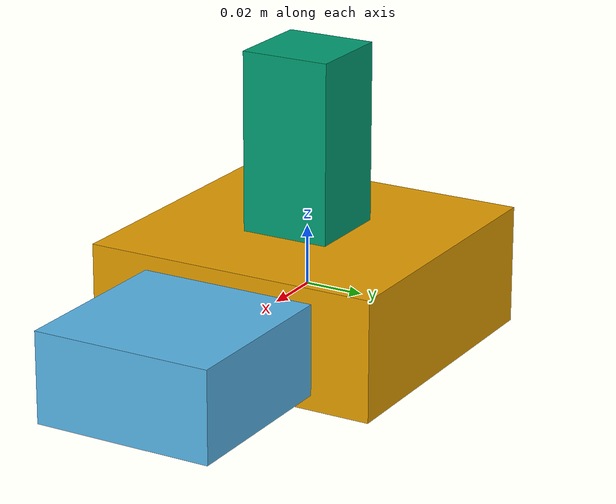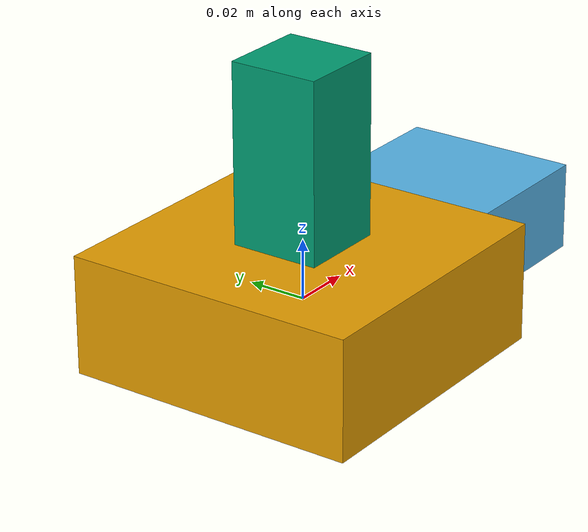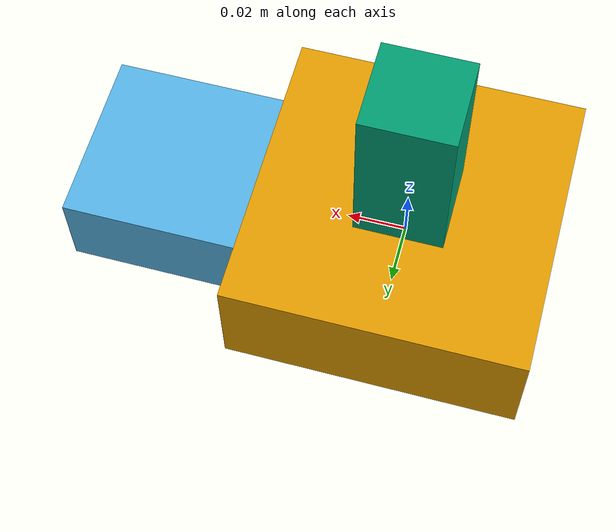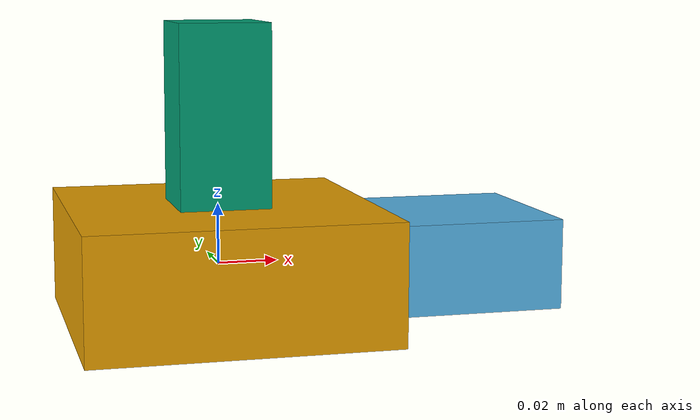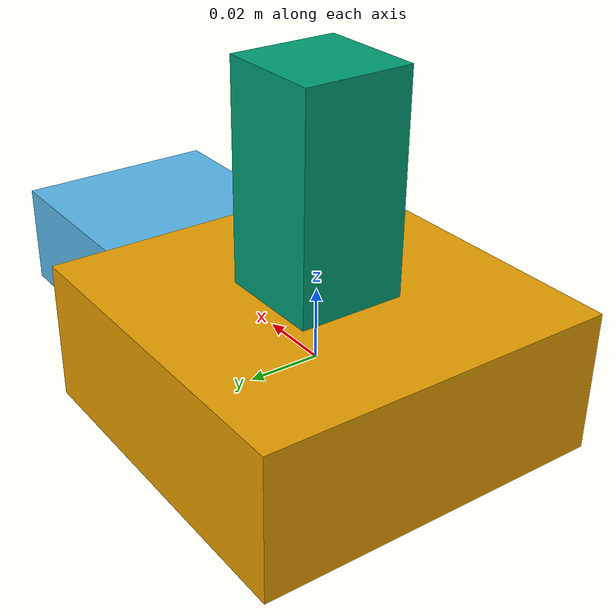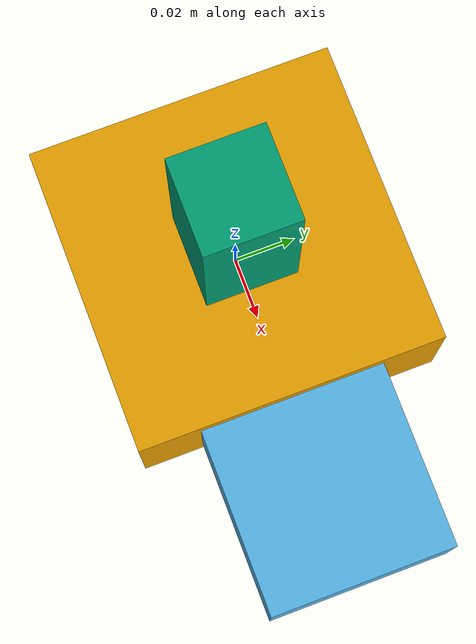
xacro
<?xml version="1.0"?>
<robot name="simple_adapter" xmlns:xacro="http://www.ros.org/wiki/xacro">
  <xacro:arg name="flange_offset" default="0.08"/>
  <xacro:arg name="include_support_block" default="true"/>

  <xacro:property name="adapter_base_xy" value="0.10"/>
  <xacro:property name="adapter_base_z" value="0.04"/>
  <xacro:property name="adapter_flange_xy" value="0.06"/>
  <xacro:property name="adapter_flange_z" value="0.03"/>

  <link name="adapter_base">
    <visual>
      <geometry>
        <box size="${adapter_base_xy} ${adapter_base_xy} ${adapter_base_z}"/>
      </geometry>
    </visual>
    <collision>
      <geometry>
        <box size="${adapter_base_xy} ${adapter_base_xy} ${adapter_base_z}"/>
      </geometry>
    </collision>
  </link>

  <link name="adapter_flange">
    <visual>
      <geometry>
        <box size="${adapter_flange_xy} ${adapter_flange_xy} ${adapter_flange_z}"/>
      </geometry>
    </visual>
    <collision>
      <geometry>
        <box size="${adapter_flange_xy} ${adapter_flange_xy} ${adapter_flange_z}"/>
      </geometry>
    </collision>
  </link>

  <joint name="adapter_body_joint" type="fixed">
    <parent link="adapter_base"/>
    <child link="adapter_flange"/>
    <origin xyz="$(arg flange_offset) 0.0 0.0" rpy="0 0 0"/>
  </joint>

  <xacro:if value="$(arg include_support_block)">
    <link name="support_block">
      <visual>
        <geometry>
          <box size="0.03 0.03 0.06"/>
        </geometry>
      </visual>
      <collision>
        <geometry>
          <box size="0.03 0.03 0.06"/>
        </geometry>
      </collision>
    </link>

    <joint name="adapter_support_joint" type="fixed">
      <parent link="adapter_base"/>
      <child link="support_block"/>
      <origin xyz="0.0 0.0 0.05" rpy="0 0 0"/>
    </joint>
  </xacro:if>

  <xacro:unless value="$(arg include_support_block)">
    <link name="compact_cap">
      <visual>
        <geometry>
          <box size="0.03 0.03 0.01"/>
        </geometry>
      </visual>
      <collision>
        <geometry>
          <box size="0.03 0.03 0.01"/>
        </geometry>
      </collision>
    </link>

    <joint name="adapter_cap_joint" type="fixed">
      <parent link="adapter_base"/>
      <child link="compact_cap"/>
      <origin xyz="0.0 0.0 0.03" rpy="0 0 0"/>
    </joint>
  </xacro:unless>
</robot>
